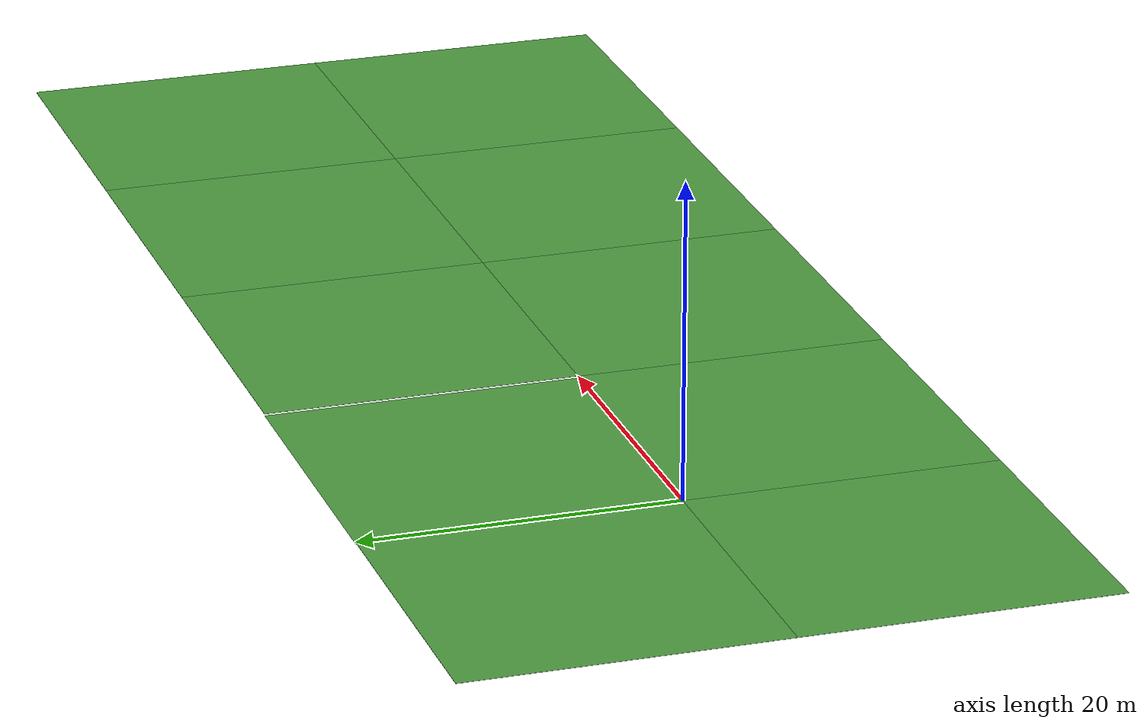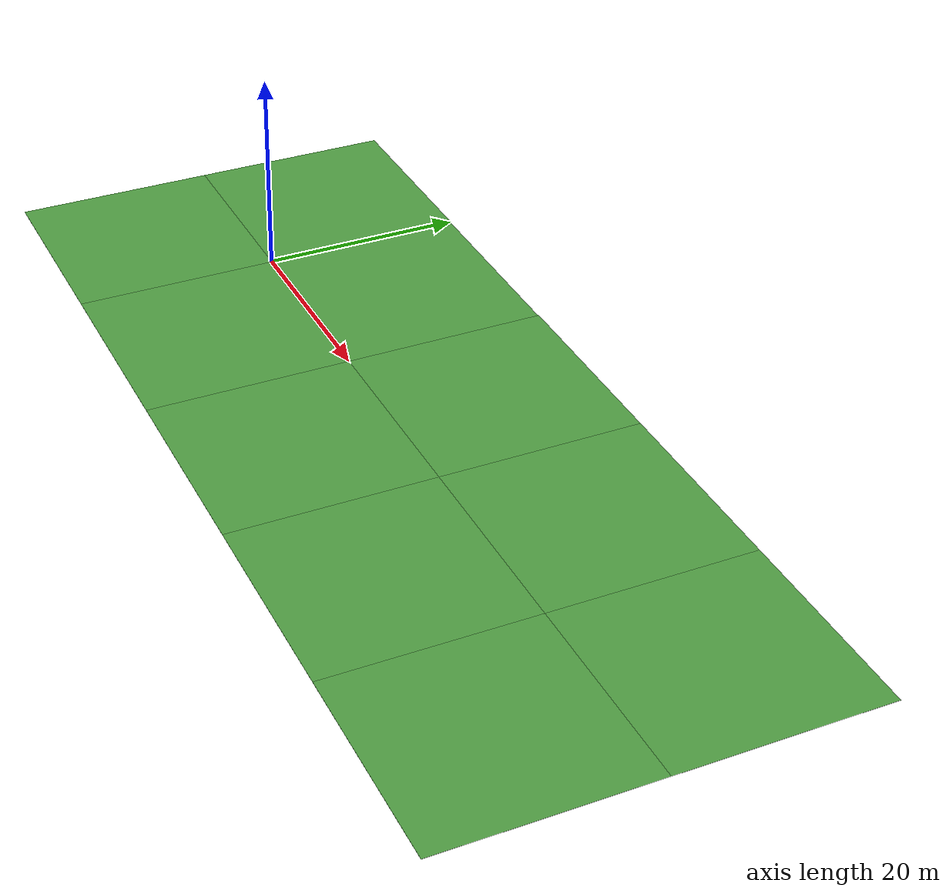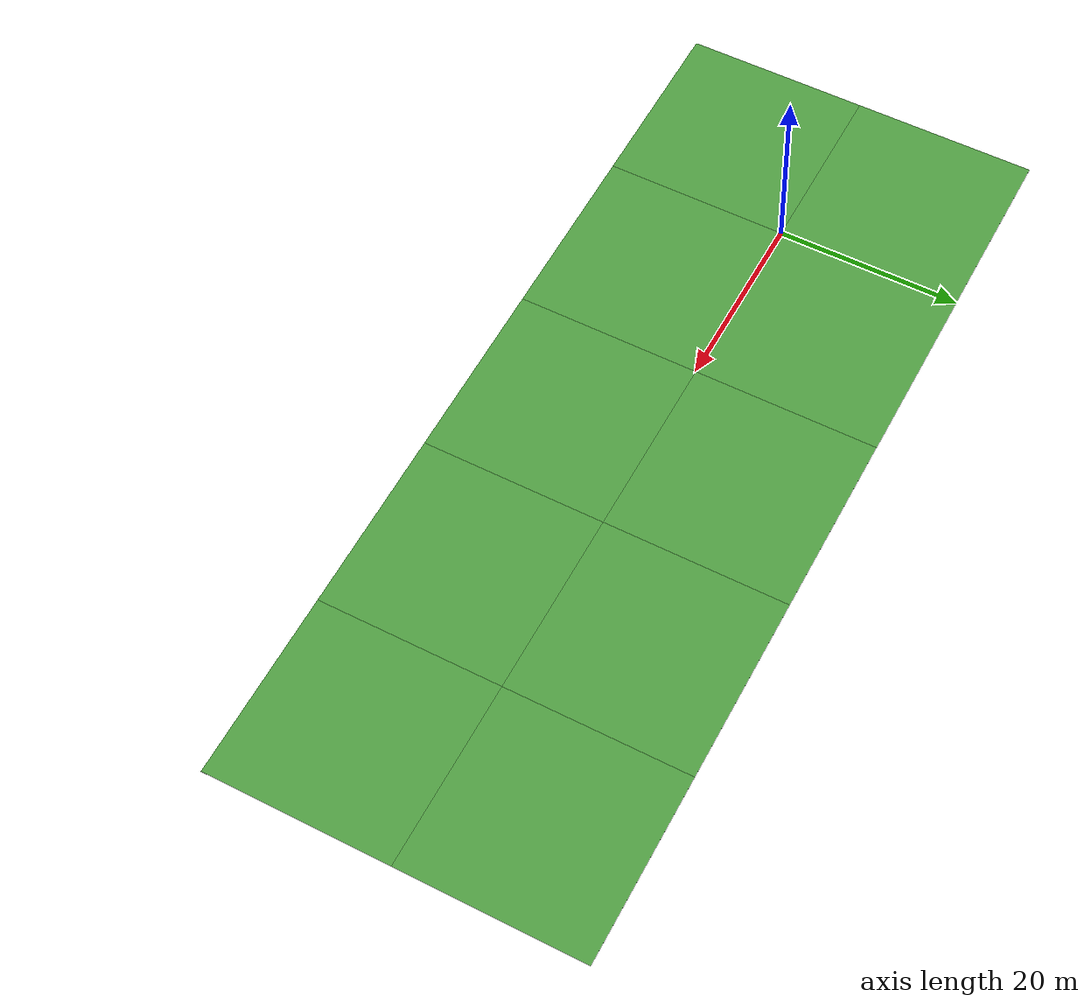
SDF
<?xml version="1.0" ?>
<sdf version="1.5">
  <world name="my_world">
    <include>
      <uri>model://ground_grass_1</uri>
      <name>ground 1</name>
      <pose>10 10 0 0 0 0</pose>
    </include>
    <include>
      <uri>model://ground_grass_2</uri>
      <name>ground 2</name>
      <pose>10 -10 0 0 0 0</pose>
    </include>
    <include>
      <uri>model://ground_grass_2</uri>
      <name>ground 3</name>
      <pose>-10 10 0 0 0 0</pose>
    </include>
    <include>
      <uri>model://ground_grass_1</uri>
      <name>ground 4</name>
      <pose>-10 -10 0 0 0 0</pose>
    </include>
    <include>
      <uri>model://ground_grass_3</uri>
      <name>ground 5</name>
      <pose>30 10 0 0 0 0</pose>
    </include>
    <include>
      <uri>model://ground_grass_2</uri>
      <name>ground 6</name>
      <pose>30 -10 0 0 0 0</pose>
    </include>
    <include>
      <uri>model://ground_grass_1</uri>
      <name>ground 7</name>
      <pose>50 10 0 0 0 0</pose>
    </include>
    <include>
      <uri>model://ground_grass_1</uri>
      <name>ground 8</name>
      <pose>50 -10 0 0 0 0</pose>
    </include>
    <include>
      <uri>model://ground_grass_2</uri>
      <name>ground 9</name>
      <pose>70 10 0 0 0 0</pose>
    </include>
    <include>
      <uri>model://ground_grass_2</uri>
      <name>ground 10</name>
      <pose>70 -10 0 0 0 0</pose>
    </include>
    <include>
      <uri>model://sun</uri>
    </include>
  </world>
</sdf>

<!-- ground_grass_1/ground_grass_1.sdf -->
<sdf version="1.5">
  <model name="ground_grass">
    <static>true</static>
    <link name="link">
      <collision name="collision">
        <geometry>
          <plane>
            <normal>0 0 1</normal>
            <size>20 20</size>
          </plane>
        </geometry>
        <surface>
          <contact>
             <collide_bitmask>0xffff</collide_bitmask>
          </contact>
          <friction>
            <ode>
              <mu>50</mu>
              <mu2>50</mu2>
            </ode>
          </friction>
        </surface>
      </collision>
      <visual name="visual">
        <cast_shadows>false</cast_shadows>
        <geometry>
          <plane>
            <normal>0 0 1</normal>
            <size>20 20</size>
          </plane>
        </geometry>
        <material>
          <script>
            <uri>model://ground_grass_1/materials/scripts</uri>
            <uri>model://ground_grass_1/materials/textures</uri>
            <name>GrassGround</name>
          </script>
        </material>
      </visual>
    </link>
  </model>
</sdf>

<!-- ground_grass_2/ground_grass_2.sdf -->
<sdf version="1.5">
  <model name="ground_grass">
    <static>true</static>
    <link name="link">
      <collision name="collision">
        <geometry>
          <plane>
            <normal>0 0 1</normal>
            <size>20 20</size>
          </plane>
        </geometry>
        <surface>
          <contact>
             <collide_bitmask>0xffff</collide_bitmask>
          </contact>
          <friction>
            <ode>
              <mu>100</mu>
              <mu2>50</mu2>
            </ode>
          </friction>
        </surface>
      </collision>
      <visual name="visual">
        <cast_shadows>false</cast_shadows>
        <geometry>
          <plane>
            <normal>0 0 1</normal>
            <size>20 20</size>
          </plane>
        </geometry>
        <material>
          <script>
            <uri>model://ground_grass_2/materials/scripts</uri>
            <uri>model://ground_grass_2/materials/textures</uri>
            <name>GrassGround</name>
          </script>
        </material>
      </visual>
    </link>
  </model>
</sdf>

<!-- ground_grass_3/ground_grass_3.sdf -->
<sdf version="1.5">
  <model name="ground_grass">
    <static>true</static>
    <link name="link">
      <collision name="collision">
        <geometry>
          <plane>
            <normal>0 0 1</normal>
            <size>20 20</size>
          </plane>
        </geometry>
        <surface>
          <contact>
             <collide_bitmask>0xffff</collide_bitmask>
          </contact>
          <friction>
            <ode>
              <mu>40</mu>
              <mu2>40</mu2>
            </ode>
          </friction>
        </surface>
      </collision>
      <visual name="visual">
        <cast_shadows>false</cast_shadows>
        <geometry>
          <plane>
            <normal>0 0 1</normal>
            <size>20 20</size>
          </plane>
        </geometry>
        <material>
          <script>
            <uri>model://ground_grass_3/materials/scripts</uri>
            <uri>model://ground_grass_3/materials/textures</uri>
            <name>GrassGround</name>
          </script>
        </material>
      </visual>
    </link>
  </model>
</sdf>
